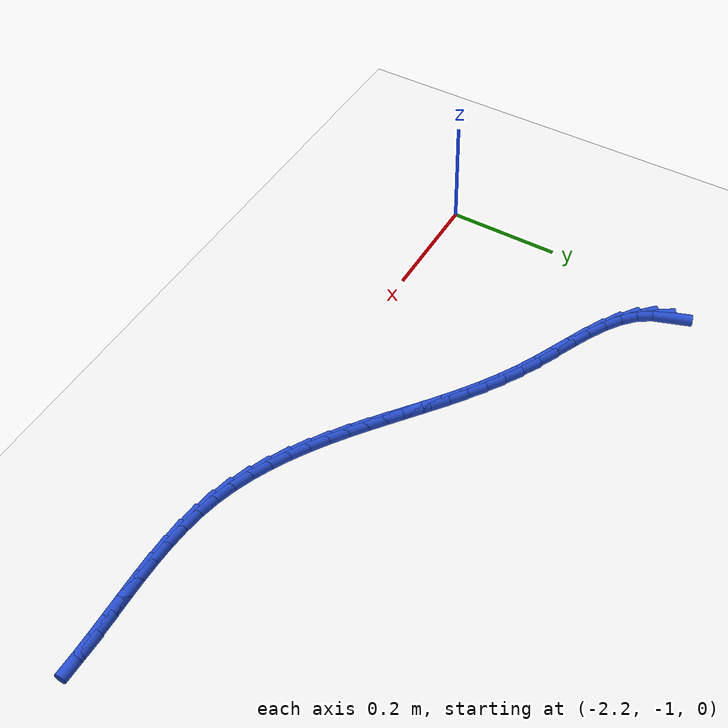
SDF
<sdf version="1.6">
 <world name="default">
  <model name="ground_plane">
   <static>1</static>
   <link name="link">
    <collision name="collision">
     <geometry><plane><normal>0 0 1</normal><size>100 100</size></plane></geometry>
     <surface><friction><ode><mu>100</mu><mu2>50</mu2></ode></friction></surface>
    </collision>
    <visual name="visual">
     <cast_shadows>0</cast_shadows>
     <geometry><plane><normal>0 0 1</normal><size>100 100</size></plane></geometry>
     <material>
      <script><uri>file://media/materials/scripts/gazebo.material</uri><name>Gazebo/WhiteGlow</name></script>
     </material>
    </visual>
   </link>
  </model>
  <model name="line">
   <link name="link_123">
    <pose>-2.143443645972794 -0.5545631209351901 0.01 0 1.57 -1.2393994940422437</pose>
    <collision name="collision">
     <geometry><cylinder><radius>0.01</radius><length>0.08</length></cylinder></geometry>
    </collision>
    <visual name="visual">
     <material>
      <script><name>Gazebo/Blue</name><uri>file://media/materials/scripts/gazebo.material</uri></script>
     </material>
     <geometry><cylinder><radius>0.01</radius><length>0.08</length></cylinder></geometry>
    </visual>
   </link>
   <link name="link_124">
    <pose>-2.134252097927112 -0.5812760335407826 0.01 0 1.57 -0.9876092841344676</pose>
    <collision name="collision">
     <geometry><cylinder><radius>0.01</radius><length>0.08</length></cylinder></geometry>
    </collision>
    <visual name="visual">
     <material>
      <script><name>Gazebo/Blue</name><uri>file://media/materials/scripts/gazebo.material</uri></script>
     </material>
     <geometry><cylinder><radius>0.01</radius><length>0.08</length></cylinder></geometry>
    </visual>
   </link>
   <link name="link_125">
    <pose>-2.1186549283216403 -0.6049176705835135 0.01 0 1.57 -0.76478741082747</pose>
    <collision name="collision">
     <geometry><cylinder><radius>0.01</radius><length>0.08</length></cylinder></geometry>
    </collision>
    <visual name="visual">
     <material>
      <script><name>Gazebo/Blue</name><uri>file://media/materials/scripts/gazebo.material</uri></script>
     </material>
     <geometry><cylinder><radius>0.01</radius><length>0.08</length></cylinder></geometry>
    </visual>
   </link>
   <link name="link_126">
    <pose>-2.0970118092024075 -0.6256865232458063 0.01 0 1.57 -0.6101197880889484</pose>
    <collision name="collision">
     <geometry><cylinder><radius>0.01</radius><length>0.08</length></cylinder></geometry>
    </collision>
    <visual name="visual">
     <material>
      <script><name>Gazebo/Blue</name><uri>file://media/materials/scripts/gazebo.material</uri></script>
     </material>
     <geometry><cylinder><radius>0.01</radius><length>0.08</length></cylinder></geometry>
    </visual>
   </link>
   <link name="link_127">
    <pose>-2.070519865270441 -0.6442069665490334 0.01 0 1.57 -0.5115335429617488</pose>
    <collision name="collision">
     <geometry><cylinder><radius>0.01</radius><length>0.08</length></cylinder></geometry>
    </collision>
    <visual name="visual">
     <material>
      <script><name>Gazebo/Blue</name><uri>file://media/materials/scripts/gazebo.material</uri></script>
     </material>
     <geometry><cylinder><radius>0.01</radius><length>0.08</length></cylinder></geometry>
    </visual>
   </link>
   <link name="link_128">
    <pose>-2.0404000017282136 -0.6611154690116587 0.01 0 1.57 -0.45548821613583584</pose>
    <collision name="collision">
     <geometry><cylinder><radius>0.01</radius><length>0.08</length></cylinder></geometry>
    </collision>
    <visual name="visual">
     <material>
      <script><name>Gazebo/Blue</name><uri>file://media/materials/scripts/gazebo.material</uri></script>
     </material>
     <geometry><cylinder><radius>0.01</radius><length>0.08</length></cylinder></geometry>
    </visual>
   </link>
   <link name="link_129">
    <pose>-2.0078731237781993 -0.6770484991521465 0.01 0 1.57 -0.4332434126044663</pose>
    <collision name="collision">
     <geometry><cylinder><radius>0.01</radius><length>0.08</length></cylinder></geometry>
    </collision>
    <visual name="visual">
     <material>
      <script><name>Gazebo/Blue</name><uri>file://media/materials/scripts/gazebo.material</uri></script>
     </material>
     <geometry><cylinder><radius>0.01</radius><length>0.08</length></cylinder></geometry>
    </visual>
   </link>
   <link name="link_130">
    <pose>-1.9741601366228716 -0.692642525488961 0.01 0 1.57 -0.4408856853489285</pose>
    <collision name="collision">
     <geometry><cylinder><radius>0.01</radius><length>0.08</length></cylinder></geometry>
    </collision>
    <visual name="visual">
     <material>
      <script><name>Gazebo/Blue</name><uri>file://media/materials/scripts/gazebo.material</uri></script>
     </material>
     <geometry><cylinder><radius>0.01</radius><length>0.08</length></cylinder></geometry>
    </visual>
   </link>
   <link name="link_131">
    <pose>-1.9404819454647038 -0.7085340165405665 0.01 0 1.57 -0.47780180054010546</pose>
    <collision name="collision">
     <geometry><cylinder><radius>0.01</radius><length>0.08</length></cylinder></geometry>
    </collision>
    <visual name="visual">
     <material>
      <script><name>Gazebo/Blue</name><uri>file://media/materials/scripts/gazebo.material</uri></script>
     </material>
     <geometry><cylinder><radius>0.01</radius><length>0.08</length></cylinder></geometry>
    </visual>
   </link>
   <link name="link_132">
    <pose>-1.9080257100571019 -0.7253405057752226 0.01 0 1.57 -0.5276967026227274</pose>
    <collision name="collision">
     <geometry><cylinder><radius>0.01</radius><length>0.08</length></cylinder></geometry>
    </collision>
    <visual name="visual">
     <material>
      <script><name>Gazebo/Blue</name><uri>file://media/materials/scripts/gazebo.material</uri></script>
     </material>
     <geometry><cylinder><radius>0.01</radius><length>0.08</length></cylinder></geometry>
    </visual>
   </link>
   <link name="link_133">
    <pose>-1.877255875381211 -0.7432740011496279 0.01 0 1.57 -0.5722726618830182</pose>
    <collision name="collision">
     <geometry><cylinder><radius>0.01</radius><length>0.08</length></cylinder></geometry>
    </collision>
    <visual name="visual">
     <material>
      <script><name>Gazebo/Blue</name><uri>file://media/materials/scripts/gazebo.material</uri></script>
     </material>
     <geometry><cylinder><radius>0.01</radius><length>0.08</length></cylinder></geometry>
    </visual>
   </link>
   <link name="link_134">
    <pose>-1.847942665094188 -0.7621569731869711 0.01 0 1.57 -0.609748920415613</pose>
    <collision name="collision">
     <geometry><cylinder><radius>0.01</radius><length>0.08</length></cylinder></geometry>
    </collision>
    <visual name="visual">
     <material>
      <script><name>Gazebo/Blue</name><uri>file://media/materials/scripts/gazebo.material</uri></script>
     </material>
     <geometry><cylinder><radius>0.01</radius><length>0.08</length></cylinder></geometry>
    </visual>
   </link>
   <link name="link_135">
    <pose>-1.819828258984299 -0.7817961565977591 0.01 0 1.57 -0.6392970689976654</pose>
    <collision name="collision">
     <geometry><cylinder><radius>0.01</radius><length>0.08</length></cylinder></geometry>
    </collision>
    <visual name="visual">
     <material>
      <script><name>Gazebo/Blue</name><uri>file://media/materials/scripts/gazebo.material</uri></script>
     </material>
     <geometry><cylinder><radius>0.01</radius><length>0.08</length></cylinder></geometry>
    </visual>
   </link>
   <link name="link_136">
    <pose>-1.7926548368398092 -0.8019982860924986 0.01 0 1.57 -0.6602965556639956</pose>
    <collision name="collision">
     <geometry><cylinder><radius>0.01</radius><length>0.08</length></cylinder></geometry>
    </collision>
    <visual name="visual">
     <material>
      <script><name>Gazebo/Blue</name><uri>file://media/materials/scripts/gazebo.material</uri></script>
     </material>
     <geometry><cylinder><radius>0.01</radius><length>0.08</length></cylinder></geometry>
    </visual>
   </link>
   <link name="link_137">
    <pose>-1.7661645784489832 -0.822570096381696 0.01 0 1.57 -0.672310154977436</pose>
    <collision name="collision">
     <geometry><cylinder><radius>0.01</radius><length>0.08</length></cylinder></geometry>
    </collision>
    <visual name="visual">
     <material>
      <script><name>Gazebo/Blue</name><uri>file://media/materials/scripts/gazebo.material</uri></script>
     </material>
     <geometry><cylinder><radius>0.01</radius><length>0.08</length></cylinder></geometry>
    </visual>
   </link>
   <link name="link_138">
    <pose>-1.7400996636000863 -0.8433183221758587 0.01 0 1.57 -0.6750578443986746</pose>
    <collision name="collision">
     <geometry><cylinder><radius>0.01</radius><length>0.08</length></cylinder></geometry>
    </collision>
    <visual name="visual">
     <material>
      <script><name>Gazebo/Blue</name><uri>file://media/materials/scripts/gazebo.material</uri></script>
     </material>
     <geometry><cylinder><radius>0.01</radius><length>0.08</length></cylinder></geometry>
    </visual>
   </link>
   <link name="link_139">
    <pose>-1.7142022720813852 -0.864049698185493 0.01 0 1.57 -0.6683999894791994</pose>
    <collision name="collision">
     <geometry><cylinder><radius>0.01</radius><length>0.08</length></cylinder></geometry>
    </collision>
    <visual name="visual">
     <material>
      <script><name>Gazebo/Blue</name><uri>file://media/materials/scripts/gazebo.material</uri></script>
     </material>
     <geometry><cylinder><radius>0.01</radius><length>0.08</length></cylinder></geometry>
    </visual>
   </link>
   <link name="link_140">
    <pose>-1.6882145836811446 -0.8845709591211055 0.01 0 1.57 -0.6523369290573887</pose>
    <collision name="collision">
     <geometry><cylinder><radius>0.01</radius><length>0.08</length></cylinder></geometry>
    </collision>
    <visual name="visual">
     <material>
      <script><name>Gazebo/Blue</name><uri>file://media/materials/scripts/gazebo.material</uri></script>
     </material>
     <geometry><cylinder><radius>0.01</radius><length>0.08</length></cylinder></geometry>
    </visual>
   </link>
   <link name="link_141">
    <pose>-1.6618787781876294 -0.9046888396932031 0.01 0 1.57 -0.6270276542283146</pose>
    <collision name="collision">
     <geometry><cylinder><radius>0.01</radius><length>0.08</length></cylinder></geometry>
    </collision>
    <visual name="visual">
     <material>
      <script><name>Gazebo/Blue</name><uri>file://media/materials/scripts/gazebo.material</uri></script>
     </material>
     <geometry><cylinder><radius>0.01</radius><length>0.08</length></cylinder></geometry>
    </visual>
   </link>
   <link name="link_142">
    <pose>-1.634937035389106 -0.9242100746122929 0.01 0 1.57 -0.592825327605603</pose>
    <collision name="collision">
     <geometry><cylinder><radius>0.01</radius><length>0.08</length></cylinder></geometry>
    </collision>
    <visual name="visual">
     <material>
      <script><name>Gazebo/Blue</name><uri>file://media/materials/scripts/gazebo.material</uri></script>
     </material>
     <geometry><cylinder><radius>0.01</radius><length>0.08</length></cylinder></geometry>
    </visual>
   </link>
   <link name="link_143">
    <pose>-1.6071315350738384 -0.9429413985888808 0.01 0 1.57 -0.5503435246512997</pose>
    <collision name="collision">
     <geometry><cylinder><radius>0.01</radius><length>0.08</length></cylinder></geometry>
    </collision>
    <visual name="visual">
     <material>
      <script><name>Gazebo/Blue</name><uri>file://media/materials/scripts/gazebo.material</uri></script>
     </material>
     <geometry><cylinder><radius>0.01</radius><length>0.08</length></cylinder></geometry>
    </visual>
   </link>
   <link name="link_144">
    <pose>-1.5782341228357994 -0.9606722140633706 0.01 0 1.57 -0.5000479935589152</pose>
    <collision name="collision">
     <geometry><cylinder><radius>0.01</radius><length>0.08</length></cylinder></geometry>
    </collision>
    <visual name="visual">
     <material>
      <script><name>Gazebo/Blue</name><uri>file://media/materials/scripts/gazebo.material</uri></script>
     </material>
     <geometry><cylinder><radius>0.01</radius><length>0.08</length></cylinder></geometry>
    </visual>
   </link>
   <link name="link_145">
    <pose>-1.5482790770583417 -0.9770385969144402 0.01 0 1.57 -0.4410202818828094</pose>
    <collision name="collision">
     <geometry><cylinder><radius>0.01</radius><length>0.08</length></cylinder></geometry>
    </collision>
    <visual name="visual">
     <material>
      <script><name>Gazebo/Blue</name><uri>file://media/materials/scripts/gazebo.material</uri></script>
     </material>
     <geometry><cylinder><radius>0.01</radius><length>0.08</length></cylinder></geometry>
    </visual>
   </link>
   <link name="link_146">
    <pose>-1.5174376155079694 -0.9915966160794397 0.01 0 1.57 -0.3718119694974826</pose>
    <collision name="collision">
     <geometry><cylinder><radius>0.01</radius><length>0.08</length></cylinder></geometry>
    </collision>
    <visual name="visual">
     <material>
      <script><name>Gazebo/Blue</name><uri>file://media/materials/scripts/gazebo.material</uri></script>
     </material>
     <geometry><cylinder><radius>0.01</radius><length>0.08</length></cylinder></geometry>
    </visual>
   </link>
   <link name="link_147">
    <pose>-1.485882142962547 -1.003901646983406 0.01 0 1.57 -0.2910606169122865</pose>
    <collision name="collision">
     <geometry><cylinder><radius>0.01</radius><length>0.08</length></cylinder></geometry>
    </collision>
    <visual name="visual">
     <material>
      <script><name>Gazebo/Blue</name><uri>file://media/materials/scripts/gazebo.material</uri></script>
     </material>
     <geometry><cylinder><radius>0.01</radius><length>0.08</length></cylinder></geometry>
    </visual>
   </link>
   <link name="link_148">
    <pose>-1.4537838183495693 -1.0135172848804657 0.01 0 1.57 -0.20716944076930363</pose>
    <collision name="collision">
     <geometry><cylinder><radius>0.01</radius><length>0.08</length></cylinder></geometry>
    </collision>
    <visual name="visual">
     <material>
      <script><name>Gazebo/Blue</name><uri>file://media/materials/scripts/gazebo.material</uri></script>
     </material>
     <geometry><cylinder><radius>0.01</radius><length>0.08</length></cylinder></geometry>
    </visual>
   </link>
   <link name="link_149">
    <pose>-1.42126137498825 -1.0203530169153547 0.01 0 1.57 -0.1338671654537476</pose>
    <collision name="collision">
     <geometry><cylinder><radius>0.01</radius><length>0.08</length></cylinder></geometry>
    </collision>
    <visual name="visual">
     <material>
      <script><name>Gazebo/Blue</name><uri>file://media/materials/scripts/gazebo.material</uri></script>
     </material>
     <geometry><cylinder><radius>0.01</radius><length>0.08</length></cylinder></geometry>
    </visual>
   </link>
   <link name="link_150">
    <pose>-1.38836303886821 -1.024783521087685 0.01 0 1.57 -0.07307524449506676</pose>
    <collision name="collision">
     <geometry><cylinder><radius>0.01</radius><length>0.08</length></cylinder></geometry>
    </collision>
    <visual name="visual">
     <material>
      <script><name>Gazebo/Blue</name><uri>file://media/materials/scripts/gazebo.material</uri></script>
     </material>
     <geometry><cylinder><radius>0.01</radius><length>0.08</length></cylinder></geometry>
    </visual>
   </link>
   <link name="link_151">
    <pose>-1.3551320739501838 -1.0272162137020506 0.01 0 1.57 -0.025122668982728396</pose>
    <collision name="collision">
     <geometry><cylinder><radius>0.01</radius><length>0.08</length></cylinder></geometry>
    </collision>
    <visual name="visual">
     <material>
      <script><name>Gazebo/Blue</name><uri>file://media/materials/scripts/gazebo.material</uri></script>
     </material>
     <geometry><cylinder><radius>0.01</radius><length>0.08</length></cylinder></geometry>
    </visual>
   </link>
   <link name="link_152">
    <pose>-1.3216117441949085 -1.0280585110630454 0.01 0 1.57 0.010089015101875052</pose>
    <collision name="collision">
     <geometry><cylinder><radius>0.01</radius><length>0.08</length></cylinder></geometry>
    </collision>
    <visual name="visual">
     <material>
      <script><name>Gazebo/Blue</name><uri>file://media/materials/scripts/gazebo.material</uri></script>
     </material>
     <geometry><cylinder><radius>0.01</radius><length>0.08</length></cylinder></geometry>
    </visual>
   </link>
   <link name="link_153">
    <pose>-1.287845313563118 -1.0277178294752616 0.01 0 1.57 0.03284859511444042</pose>
    <collision name="collision">
     <geometry><cylinder><radius>0.01</radius><length>0.08</length></cylinder></geometry>
    </collision>
    <visual name="visual">
     <material>
      <script><name>Gazebo/Blue</name><uri>file://media/materials/scripts/gazebo.material</uri></script>
     </material>
     <geometry><cylinder><radius>0.01</radius><length>0.08</length></cylinder></geometry>
    </visual>
   </link>
   <link name="link_154">
    <pose>-1.2538760460155474 -1.026601585243294 0.01 0 1.57 0.0434663352521689</pose>
    <collision name="collision">
     <geometry><cylinder><radius>0.01</radius><length>0.08</length></cylinder></geometry>
    </collision>
    <visual name="visual">
     <material>
      <script><name>Gazebo/Blue</name><uri>file://media/materials/scripts/gazebo.material</uri></script>
     </material>
     <geometry><cylinder><radius>0.01</radius><length>0.08</length></cylinder></geometry>
    </visual>
   </link>
   <link name="link_155">
    <pose>-1.2197472055129324 -1.0251171946717355 0.01 0 1.57 0.04217425619746796</pose>
    <collision name="collision">
     <geometry><cylinder><radius>0.01</radius><length>0.08</length></cylinder></geometry>
    </collision>
    <visual name="visual">
     <material>
      <script><name>Gazebo/Blue</name><uri>file://media/materials/scripts/gazebo.material</uri></script>
     </material>
     <geometry><cylinder><radius>0.01</radius><length>0.08</length></cylinder></geometry>
    </visual>
   </link>
   <link name="link_156">
    <pose>-1.1855020560160074 -1.0236720740651792 0.01 0 1.57 0.029085235764312302</pose>
    <collision name="collision">
     <geometry><cylinder><radius>0.01</radius><length>0.08</length></cylinder></geometry>
    </collision>
    <visual name="visual">
     <material>
      <script><name>Gazebo/Blue</name><uri>file://media/materials/scripts/gazebo.material</uri></script>
     </material>
     <geometry><cylinder><radius>0.01</radius><length>0.08</length></cylinder></geometry>
    </visual>
   </link>
   <link name="link_157">
    <pose>-1.1511838614855079 -1.0226736397282197 0.01 0 1.57 0.004202020956012159</pose>
    <collision name="collision">
     <geometry><cylinder><radius>0.01</radius><length>0.08</length></cylinder></geometry>
    </collision>
    <visual name="visual">
     <material>
      <script><name>Gazebo/Blue</name><uri>file://media/materials/scripts/gazebo.material</uri></script>
     </material>
     <geometry><cylinder><radius>0.01</radius><length>0.08</length></cylinder></geometry>
    </visual>
   </link>
  </model>
 </world>
</sdf>
